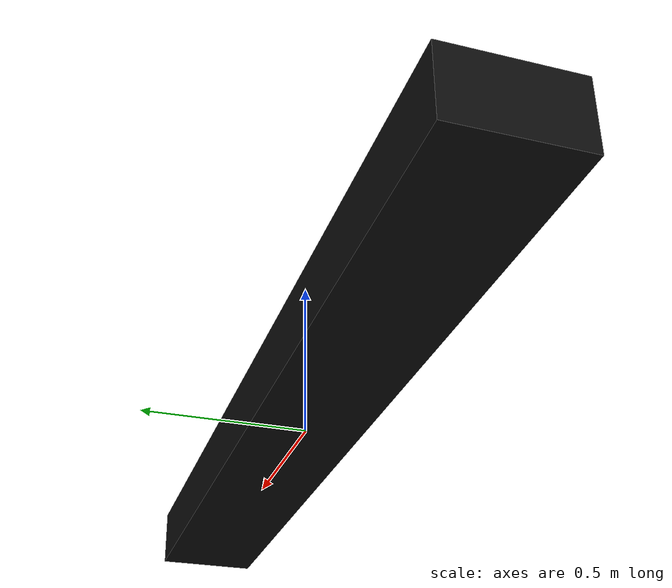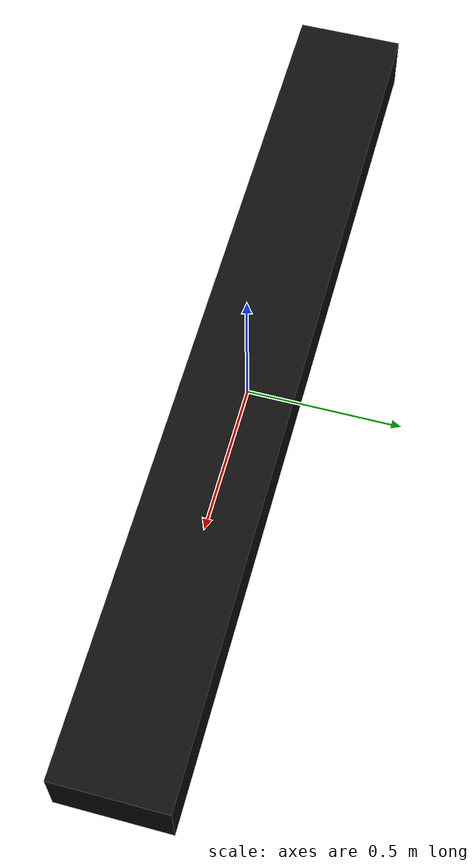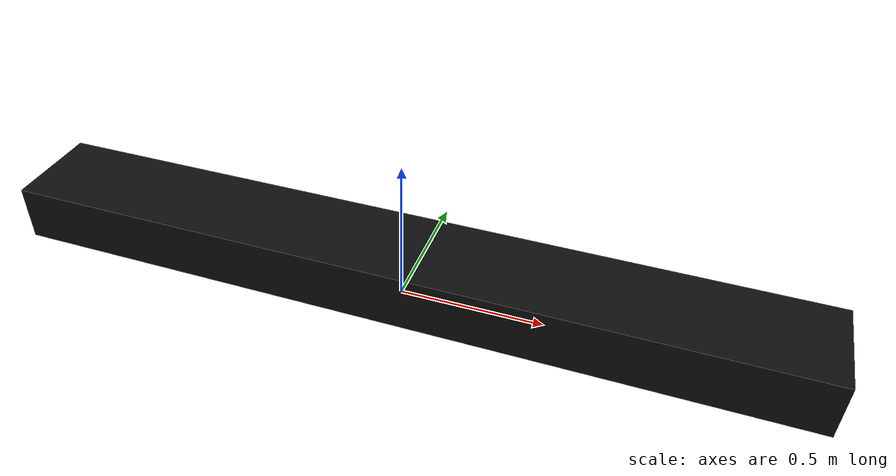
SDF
<?xml version="1.0" ?>
<sdf version="1.9">
  <model name="conveyor">
    <static>true</static>

    <link name="belt_link">
      <collision name="belt_collision">
        <pose>0 0 0.10 0 0 0</pose>
        <geometry>
          <box>
            <!-- más larga y más alta -->
            <size>2.80 0.35 0.20</size>
          </box>
        </geometry>
        <surface>
          <friction>
            <ode>
              <mu>1.0</mu>
              <mu2>1.0</mu2>
            </ode>
          </friction>
        </surface>
      </collision>

      <visual name="belt_visual">
        <pose>0 0 0.10 0 0 0</pose>
        <geometry>
          <box>
            <size>2.80 0.35 0.20</size>
          </box>
        </geometry>
        <material>
          <ambient>0.05 0.05 0.05 1</ambient>
          <diffuse>0.05 0.05 0.05 1</diffuse>
        </material>
      </visual>
    </link>
  </model>
</sdf>
